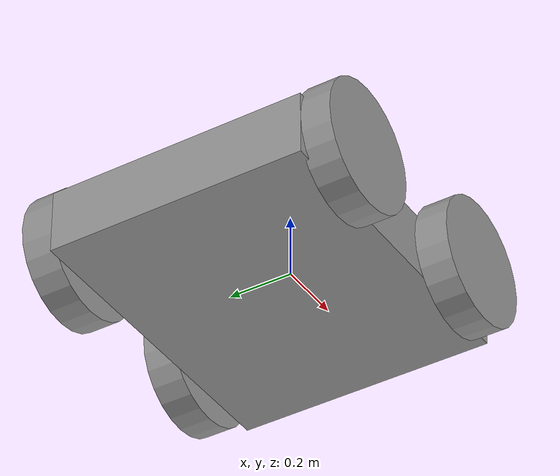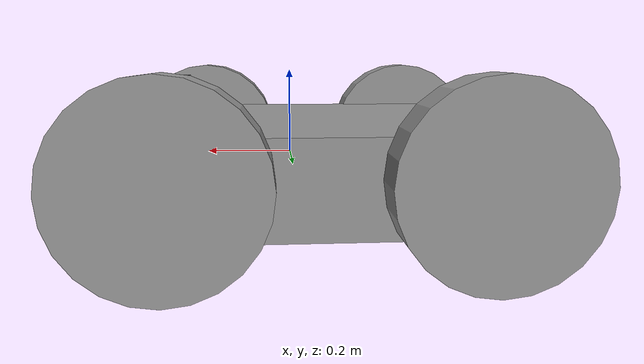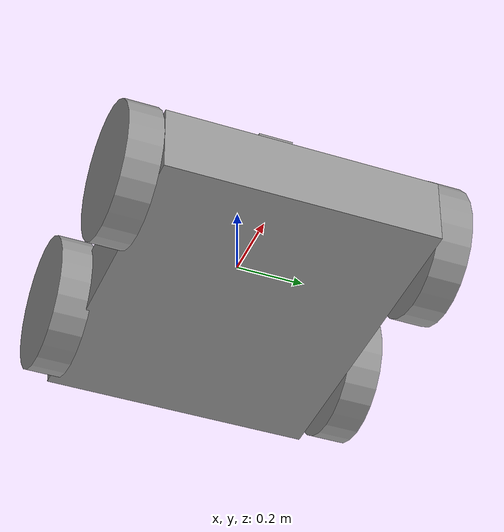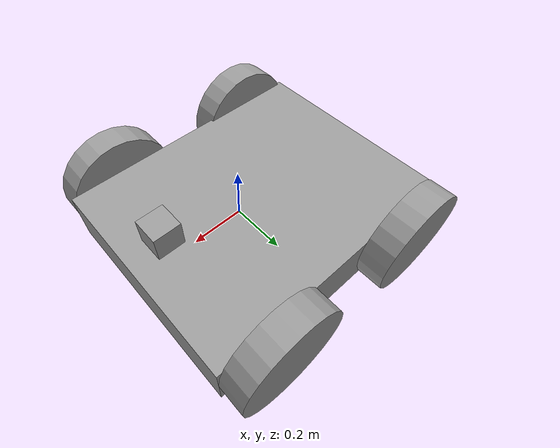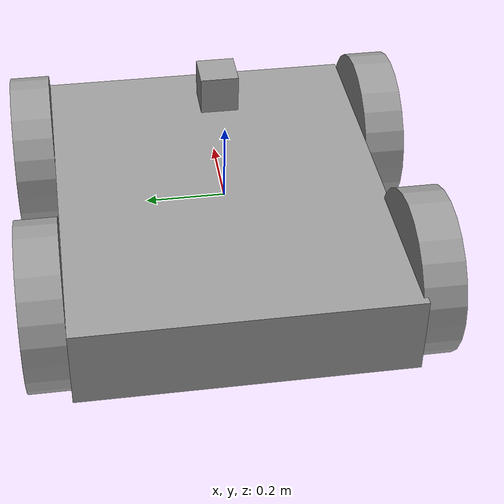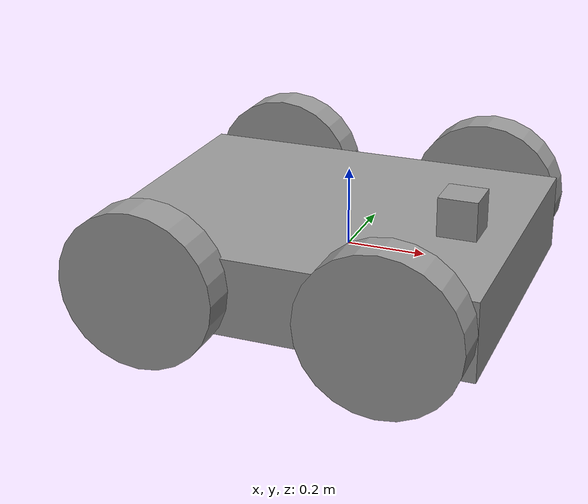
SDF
<?xml version='1.0'?>
<sdf version='1.7'>
  <model name='robot'>
    <link name='base_link'>
      <inertial>
        <mass>10</mass>
        <inertia>
          <ixx>0.166667</ixx>
          <ixy>0</ixy>
          <ixz>0</ixz>
          <iyy>0.166667</iyy>
          <iyz>0</iyz>
          <izz>0.166667</izz>
        </inertia>
        <pose>0 0 0 0 -0 0</pose>
      </inertial>
      <pose>-0.06 0.022497 -0.013333 0 -0 0</pose>
      <gravity>1</gravity>
      <self_collide>0</self_collide>
      <kinematic>0</kinematic>
      <enable_wind>0</enable_wind>
      <visual name='visual'>
        <pose>0 0 0 0 -0 0</pose>
        <geometry>
          <box>
            <size>1 0.8 0.2</size>
          </box>
        </geometry>
        <material>
          <lighting>1</lighting>
          <script>
            <uri>file://media/materials/scripts/gazebo.material</uri>
            <name>Gazebo/Grey</name>
          </script>
          <shader type='pixel'>
            <normal_map>__default__</normal_map>
          </shader>
          <ambient>0.3 0.3 0.3 1</ambient>
          <diffuse>0.7 0.7 0.7 1</diffuse>
          <specular>0.01 0.01 0.01 1</specular>
          <emissive>0 0 0 1</emissive>
        </material>
        <transparency>0</transparency>
        <cast_shadows>1</cast_shadows>
      </visual>
      <collision name='collision'>
        <laser_retro>0</laser_retro>
        <max_contacts>10</max_contacts>
        <pose>0 0 0 0 -0 0</pose>
        <geometry>
          <box>
            <size>1 0.8 0.2</size>
          </box>
        </geometry>
        <surface>
          <friction>
            <ode>
              <mu>1</mu>
              <mu2>1</mu2>
              <fdir1>0 0 0</fdir1>
              <slip1>0</slip1>
              <slip2>0</slip2>
            </ode>
            <torsional>
              <coefficient>1</coefficient>
              <patch_radius>0</patch_radius>
              <surface_radius>0</surface_radius>
              <use_patch_radius>1</use_patch_radius>
              <ode>
                <slip>0</slip>
              </ode>
            </torsional>
          </friction>
          <bounce>
            <restitution_coefficient>0</restitution_coefficient>
            <threshold>1e+06</threshold>
          </bounce>
          <contact>
            <collide_without_contact>0</collide_without_contact>
            <collide_without_contact_bitmask>1</collide_without_contact_bitmask>
            <collide_bitmask>1</collide_bitmask>
            <ode>
              <soft_cfm>0</soft_cfm>
              <soft_erp>0.2</soft_erp>
              <kp>1e+13</kp>
              <kd>1</kd>
              <max_vel>0.01</max_vel>
              <min_depth>0</min_depth>
            </ode>
            <bullet>
              <split_impulse>1</split_impulse>
              <split_impulse_penetration_threshold>-0.01</split_impulse_penetration_threshold>
              <soft_cfm>0</soft_cfm>
              <soft_erp>0.2</soft_erp>
              <kp>1e+13</kp>
              <kd>1</kd>
            </bullet>
          </contact>
        </surface>
      </collision>
    </link>
    <link name='back_left_wheel'>
      <inertial>
        <mass>1</mass>
        <inertia>
          <ixx>0.145833</ixx>
          <ixy>0</ixy>
          <ixz>0</ixz>
          <iyy>0.145833</iyy>
          <iyz>0</iyz>
          <izz>0.125</izz>
        </inertia>
        <pose>0 0 0 0 -0 0</pose>
      </inertial>
      <pose>-0.36 -0.417503 0.006667 0 -0 0</pose>
      <gravity>1</gravity>
      <self_collide>0</self_collide>
      <kinematic>0</kinematic>
      <enable_wind>0</enable_wind>
      <visual name='visual'>
        <pose>0 0 0 1.5707 -0 0</pose>
        <geometry>
          <cylinder>
            <radius>0.2</radius>
            <length>0.1</length>
          </cylinder>
        </geometry>
        <material>
          <lighting>1</lighting>
          <script>
            <uri>file://media/materials/scripts/gazebo.material</uri>
            <name>Gazebo/Grey</name>
          </script>
          <shader type='pixel'>
            <normal_map>__default__</normal_map>
          </shader>
          <ambient>0.3 0.3 0.3 1</ambient>
          <diffuse>0.7 0.7 0.7 1</diffuse>
          <specular>0.01 0.01 0.01 1</specular>
          <emissive>0 0 0 1</emissive>
        </material>
        <transparency>0</transparency>
        <cast_shadows>1</cast_shadows>
      </visual>
      <collision name='collision'>
        <laser_retro>0</laser_retro>
        <max_contacts>10</max_contacts>
        <pose>0 0 0 1.5707 -0 0</pose>
        <geometry>
          <cylinder>
            <radius>0.2</radius>
            <length>0.1</length>
          </cylinder>
        </geometry>
        <surface>
          <friction>
            <ode>
              <mu>1</mu>
              <mu2>1</mu2>
              <fdir1>0 0 0</fdir1>
              <slip1>0</slip1>
              <slip2>0</slip2>
            </ode>
            <torsional>
              <coefficient>1</coefficient>
              <patch_radius>0</patch_radius>
              <surface_radius>0</surface_radius>
              <use_patch_radius>1</use_patch_radius>
              <ode>
                <slip>0</slip>
              </ode>
            </torsional>
          </friction>
          <bounce>
            <restitution_coefficient>0</restitution_coefficient>
            <threshold>1e+06</threshold>
          </bounce>
          <contact>
            <collide_without_contact>0</collide_without_contact>
            <collide_without_contact_bitmask>1</collide_without_contact_bitmask>
            <collide_bitmask>1</collide_bitmask>
            <ode>
              <soft_cfm>0</soft_cfm>
              <soft_erp>0.2</soft_erp>
              <kp>1e+13</kp>
              <kd>1</kd>
              <max_vel>0.01</max_vel>
              <min_depth>0</min_depth>
            </ode>
            <bullet>
              <split_impulse>1</split_impulse>
              <split_impulse_penetration_threshold>-0.01</split_impulse_penetration_threshold>
              <soft_cfm>0</soft_cfm>
              <soft_erp>0.2</soft_erp>
              <kp>1e+13</kp>
              <kd>1</kd>
            </bullet>
          </contact>
        </surface>
      </collision>
    </link>
    <link name='back_right_wheel'>
      <inertial>
        <mass>1</mass>
        <inertia>
          <ixx>0.145833</ixx>
          <ixy>0</ixy>
          <ixz>0</ixz>
          <iyy>0.145833</iyy>
          <iyz>0</iyz>
          <izz>0.125</izz>
        </inertia>
        <pose>0 0 0 0 -0 0</pose>
      </inertial>
      <pose>-0.36 0.472516 0.006667 0 -0 0</pose>
      <gravity>1</gravity>
      <self_collide>0</self_collide>
      <kinematic>0</kinematic>
      <enable_wind>0</enable_wind>
      <visual name='visual'>
        <pose>0 0 0 1.5707 -0 0</pose>
        <geometry>
          <cylinder>
            <radius>0.2</radius>
            <length>0.1</length>
          </cylinder>
        </geometry>
        <material>
          <lighting>1</lighting>
          <script>
            <uri>file://media/materials/scripts/gazebo.material</uri>
            <name>Gazebo/Grey</name>
          </script>
          <shader type='pixel'>
            <normal_map>__default__</normal_map>
          </shader>
          <ambient>0.3 0.3 0.3 1</ambient>
          <diffuse>0.7 0.7 0.7 1</diffuse>
          <specular>0.01 0.01 0.01 1</specular>
          <emissive>0 0 0 1</emissive>
        </material>
        <transparency>0</transparency>
        <cast_shadows>1</cast_shadows>
      </visual>
      <collision name='collision'>
        <laser_retro>0</laser_retro>
        <max_contacts>10</max_contacts>
        <pose>0 0 0 1.5707 -0 0</pose>
        <geometry>
          <cylinder>
            <radius>0.2</radius>
            <length>0.1</length>
          </cylinder>
        </geometry>
        <surface>
          <friction>
            <ode>
              <mu>1</mu>
              <mu2>1</mu2>
              <fdir1>0 0 0</fdir1>
              <slip1>0</slip1>
              <slip2>0</slip2>
            </ode>
            <torsional>
              <coefficient>1</coefficient>
              <patch_radius>0</patch_radius>
              <surface_radius>0</surface_radius>
              <use_patch_radius>1</use_patch_radius>
              <ode>
                <slip>0</slip>
              </ode>
            </torsional>
          </friction>
          <bounce>
            <restitution_coefficient>0</restitution_coefficient>
            <threshold>1e+06</threshold>
          </bounce>
          <contact>
            <collide_without_contact>0</collide_without_contact>
            <collide_without_contact_bitmask>1</collide_without_contact_bitmask>
            <collide_bitmask>1</collide_bitmask>
            <ode>
              <soft_cfm>0</soft_cfm>
              <soft_erp>0.2</soft_erp>
              <kp>1e+13</kp>
              <kd>1</kd>
              <max_vel>0.01</max_vel>
              <min_depth>0</min_depth>
            </ode>
            <bullet>
              <split_impulse>1</split_impulse>
              <split_impulse_penetration_threshold>-0.01</split_impulse_penetration_threshold>
              <soft_cfm>0</soft_cfm>
              <soft_erp>0.2</soft_erp>
              <kp>1e+13</kp>
              <kd>1</kd>
            </bullet>
          </contact>
        </surface>
      </collision>
    </link>
    <link name='front_right_wheel'>
      <inertial>
        <mass>1</mass>
        <inertia>
          <ixx>0.145833</ixx>
          <ixy>0</ixy>
          <ixz>0</ixz>
          <iyy>0.145833</iyy>
          <iyz>0</iyz>
          <izz>0.125</izz>
        </inertia>
        <pose>0 0 0 0 -0 0</pose>
      </inertial>
      <pose>0.24 0.472516 0.006667 0 -0 0</pose>
      <gravity>1</gravity>
      <self_collide>0</self_collide>
      <kinematic>0</kinematic>
      <enable_wind>0</enable_wind>
      <visual name='visual'>
        <pose>0 0 0 1.5707 -0 0</pose>
        <geometry>
          <cylinder>
            <radius>0.2</radius>
            <length>0.1</length>
          </cylinder>
        </geometry>
        <material>
          <lighting>1</lighting>
          <script>
            <uri>file://media/materials/scripts/gazebo.material</uri>
            <name>Gazebo/Grey</name>
          </script>
          <shader type='pixel'>
            <normal_map>__default__</normal_map>
          </shader>
          <ambient>0.3 0.3 0.3 1</ambient>
          <diffuse>0.7 0.7 0.7 1</diffuse>
          <specular>0.01 0.01 0.01 1</specular>
          <emissive>0 0 0 1</emissive>
        </material>
        <transparency>0</transparency>
        <cast_shadows>1</cast_shadows>
      </visual>
      <collision name='collision'>
        <laser_retro>0</laser_retro>
        <max_contacts>10</max_contacts>
        <pose>0 0 0 1.5707 -0 0</pose>
        <geometry>
          <cylinder>
            <radius>0.2</radius>
            <length>0.1</length>
          </cylinder>
        </geometry>
        <surface>
          <friction>
            <ode>
              <mu>1</mu>
              <mu2>1</mu2>
              <fdir1>0 0 0</fdir1>
              <slip1>0</slip1>
              <slip2>0</slip2>
            </ode>
            <torsional>
              <coefficient>1</coefficient>
              <patch_radius>0</patch_radius>
              <surface_radius>0</surface_radius>
              <use_patch_radius>1</use_patch_radius>
              <ode>
                <slip>0</slip>
              </ode>
            </torsional>
          </friction>
          <bounce>
            <restitution_coefficient>0</restitution_coefficient>
            <threshold>1e+06</threshold>
          </bounce>
          <contact>
            <collide_without_contact>0</collide_without_contact>
            <collide_without_contact_bitmask>1</collide_without_contact_bitmask>
            <collide_bitmask>1</collide_bitmask>
            <ode>
              <soft_cfm>0</soft_cfm>
              <soft_erp>0.2</soft_erp>
              <kp>1e+13</kp>
              <kd>1</kd>
              <max_vel>0.01</max_vel>
              <min_depth>0</min_depth>
            </ode>
            <bullet>
              <split_impulse>1</split_impulse>
              <split_impulse_penetration_threshold>-0.01</split_impulse_penetration_threshold>
              <soft_cfm>0</soft_cfm>
              <soft_erp>0.2</soft_erp>
              <kp>1e+13</kp>
              <kd>1</kd>
            </bullet>
          </contact>
        </surface>
      </collision>
    </link>
    <link name='front_left_wheel'>
      <inertial>
        <mass>1</mass>
        <inertia>
          <ixx>0.145833</ixx>
          <ixy>0</ixy>
          <ixz>0</ixz>
          <iyy>0.145833</iyy>
          <iyz>0</iyz>
          <izz>0.125</izz>
        </inertia>
        <pose>0 0 0 0 -0 0</pose>
      </inertial>
      <pose>0.24 -0.427523 0.006667 0 -0 0</pose>
      <gravity>1</gravity>
      <self_collide>0</self_collide>
      <kinematic>0</kinematic>
      <enable_wind>0</enable_wind>
      <visual name='visual'>
        <pose>0 0 0 1.5707 -0 0</pose>
        <geometry>
          <cylinder>
            <radius>0.2</radius>
            <length>0.1</length>
          </cylinder>
        </geometry>
        <material>
          <lighting>1</lighting>
          <script>
            <uri>file://media/materials/scripts/gazebo.material</uri>
            <name>Gazebo/Grey</name>
          </script>
          <shader type='pixel'>
            <normal_map>__default__</normal_map>
          </shader>
          <ambient>0.3 0.3 0.3 1</ambient>
          <diffuse>0.7 0.7 0.7 1</diffuse>
          <specular>0.01 0.01 0.01 1</specular>
          <emissive>0 0 0 1</emissive>
        </material>
        <transparency>0</transparency>
        <cast_shadows>1</cast_shadows>
      </visual>
      <collision name='collision'>
        <laser_retro>0</laser_retro>
        <max_contacts>10</max_contacts>
        <pose>0 0 0 1.5707 -0 0</pose>
        <geometry>
          <cylinder>
            <radius>0.2</radius>
            <length>0.1</length>
          </cylinder>
        </geometry>
        <surface>
          <friction>
            <ode>
              <mu>1</mu>
              <mu2>1</mu2>
              <fdir1>0 0 0</fdir1>
              <slip1>0</slip1>
              <slip2>0</slip2>
            </ode>
            <torsional>
              <coefficient>1</coefficient>
              <patch_radius>0</patch_radius>
              <surface_radius>0</surface_radius>
              <use_patch_radius>1</use_patch_radius>
              <ode>
                <slip>0</slip>
              </ode>
            </torsional>
          </friction>
          <bounce>
            <restitution_coefficient>0</restitution_coefficient>
            <threshold>1e+06</threshold>
          </bounce>
          <contact>
            <collide_without_contact>0</collide_without_contact>
            <collide_without_contact_bitmask>1</collide_without_contact_bitmask>
            <collide_bitmask>1</collide_bitmask>
            <ode>
              <soft_cfm>0</soft_cfm>
              <soft_erp>0.2</soft_erp>
              <kp>1e+13</kp>
              <kd>1</kd>
              <max_vel>0.01</max_vel>
              <min_depth>0</min_depth>
            </ode>
            <bullet>
              <split_impulse>1</split_impulse>
              <split_impulse_penetration_threshold>-0.01</split_impulse_penetration_threshold>
              <soft_cfm>0</soft_cfm>
              <soft_erp>0.2</soft_erp>
              <kp>1e+13</kp>
              <kd>1</kd>
            </bullet>
          </contact>
        </surface>
      </collision>
    </link>
    <link name='link_2'>
      <inertial>
        <mass>1</mass>
        <inertia>
          <ixx>0.166667</ixx>
          <ixy>0</ixy>
          <ixz>0</ixz>
          <iyy>0.166667</iyy>
          <iyz>0</iyz>
          <izz>0.166667</izz>
        </inertia>
        <pose>0 0 0 0 -0 0</pose>
      </inertial>
      <pose>0.3 -0.022503 0.136667 0 -0 0</pose>
      <gravity>1</gravity>
      <self_collide>0</self_collide>
      <kinematic>0</kinematic>
      <enable_wind>0</enable_wind>
      <visual name='visual'>
        <pose>0 0 0 0 -0 0</pose>
        <geometry>
          <box>
            <size>0.1 0.1 0.1</size>
          </box>
        </geometry>
        <material>
          <lighting>1</lighting>
          <script>
            <uri>file://media/materials/scripts/gazebo.material</uri>
            <name>Gazebo/Grey</name>
          </script>
          <shader type='pixel'>
            <normal_map>__default__</normal_map>
          </shader>
          <ambient>0.3 0.3 0.3 1</ambient>
          <diffuse>0.7 0.7 0.7 1</diffuse>
          <specular>0.01 0.01 0.01 1</specular>
          <emissive>0 0 0 1</emissive>
        </material>
        <transparency>0</transparency>
        <cast_shadows>1</cast_shadows>
      </visual>
      <collision name='collision'>
        <laser_retro>0</laser_retro>
        <max_contacts>10</max_contacts>
        <pose>0 0 0 0 -0 0</pose>
        <geometry>
          <box>
            <size>0.1 0.1 0.1</size>
          </box>
        </geometry>
        <surface>
          <friction>
            <ode>
              <mu>1</mu>
              <mu2>1</mu2>
              <fdir1>0 0 0</fdir1>
              <slip1>0</slip1>
              <slip2>0</slip2>
            </ode>
            <torsional>
              <coefficient>1</coefficient>
              <patch_radius>0</patch_radius>
              <surface_radius>0</surface_radius>
              <use_patch_radius>1</use_patch_radius>
              <ode>
                <slip>0</slip>
              </ode>
            </torsional>
          </friction>
          <bounce>
            <restitution_coefficient>0</restitution_coefficient>
            <threshold>1e+06</threshold>
          </bounce>
          <contact>
            <collide_without_contact>0</collide_without_contact>
            <collide_without_contact_bitmask>1</collide_without_contact_bitmask>
            <collide_bitmask>1</collide_bitmask>
            <ode>
              <soft_cfm>0</soft_cfm>
              <soft_erp>0.2</soft_erp>
              <kp>1e+13</kp>
              <kd>1</kd>
              <max_vel>0.01</max_vel>
              <min_depth>0</min_depth>
            </ode>
            <bullet>
              <split_impulse>1</split_impulse>
              <split_impulse_penetration_threshold>-0.01</split_impulse_penetration_threshold>
              <soft_cfm>0</soft_cfm>
              <soft_erp>0.2</soft_erp>
              <kp>1e+13</kp>
              <kd>1</kd>
            </bullet>
          </contact>
        </surface>
      </collision>
    </link>
    <joint name='front_left_wheel_joint' type='revolute'>
      <parent>base_link</parent>
      <child>front_left_wheel</child>
      <pose>0 0 0 0 -0 0</pose>
      <axis>
        <xyz>0 1 0</xyz>
        <limit>
          <lower>-1.79769e+308</lower>
          <upper>1.79769e+308</upper>
          <effort>-1</effort>
          <velocity>-1</velocity>
        </limit>
        <dynamics>
          <spring_reference>0</spring_reference>
          <spring_stiffness>0</spring_stiffness>
          <damping>0</damping>
          <friction>0</friction>
        </dynamics>
      </axis>
      <physics>
        <ode>
          <limit>
            <cfm>0</cfm>
            <erp>0.2</erp>
          </limit>
          <suspension>
            <cfm>0</cfm>
            <erp>0.2</erp>
          </suspension>
        </ode>
      </physics>
    </joint>
    <joint name='back_left_wheel_joint' type='revolute'>
      <parent>base_link</parent>
      <child>back_left_wheel</child>
      <pose>0 0 0 0 -0 0</pose>
      <axis>
        <xyz>0 1 0</xyz>
        <limit>
          <lower>-1.79769e+308</lower>
          <upper>1.79769e+308</upper>
          <effort>-1</effort>
          <velocity>-1</velocity>
        </limit>
        <dynamics>
          <spring_reference>0</spring_reference>
          <spring_stiffness>0</spring_stiffness>
          <damping>0</damping>
          <friction>0</friction>
        </dynamics>
      </axis>
      <physics>
        <ode>
          <limit>
            <cfm>0</cfm>
            <erp>0.2</erp>
          </limit>
          <suspension>
            <cfm>0</cfm>
            <erp>0.2</erp>
          </suspension>
        </ode>
      </physics>
    </joint>
    <joint name='front_right_wheel_joint' type='revolute'>
      <parent>base_link</parent>
      <child>front_right_wheel</child>
      <pose>0 0 0 0 -0 0</pose>
      <axis>
        <xyz>0 1 0</xyz>
        <limit>
          <lower>-1.79769e+308</lower>
          <upper>1.79769e+308</upper>
          <effort>-1</effort>
          <velocity>-1</velocity>
        </limit>
        <dynamics>
          <spring_reference>0</spring_reference>
          <spring_stiffness>0</spring_stiffness>
          <damping>0</damping>
          <friction>0</friction>
        </dynamics>
      </axis>
      <physics>
        <ode>
          <limit>
            <cfm>0</cfm>
            <erp>0.2</erp>
          </limit>
          <suspension>
            <cfm>0</cfm>
            <erp>0.2</erp>
          </suspension>
        </ode>
      </physics>
    </joint>
    <joint name='back_right_wheel_joint' type='revolute'>
      <parent>base_link</parent>
      <child>back_right_wheel</child>
      <pose>0 0 0 0 -0 0</pose>
      <axis>
        <xyz>0 1 0</xyz>
        <limit>
          <lower>-1.79769e+308</lower>
          <upper>1.79769e+308</upper>
          <effort>-1</effort>
          <velocity>-1</velocity>
        </limit>
        <dynamics>
          <spring_reference>0</spring_reference>
          <spring_stiffness>0</spring_stiffness>
          <damping>0</damping>
          <friction>0</friction>
        </dynamics>
      </axis>
      <physics>
        <ode>
          <limit>
            <cfm>0</cfm>
            <erp>0.2</erp>
          </limit>
          <suspension>
            <cfm>0</cfm>
            <erp>0.2</erp>
          </suspension>
        </ode>
      </physics>
    </joint>
    <joint name='link_2_JOINT_5' type='fixed'>
      <parent>base_link</parent>
      <child>link_2</child>
      <pose>0 0 0 0 -0 0</pose>
      <axis>
        <xyz>1 0 0</xyz>
        <limit>
          <lower>-1.79769e+308</lower>
          <upper>1.79769e+308</upper>
          <effort>-1</effort>
          <velocity>-1</velocity>
        </limit>
        <dynamics>
          <spring_reference>0</spring_reference>
          <spring_stiffness>0</spring_stiffness>
          <damping>0</damping>
        </dynamics>
      </axis>
      <physics>
        <ode>
          <limit>
            <cfm>0</cfm>
            <erp>0.2</erp>
          </limit>
          <suspension>
            <cfm>0</cfm>
            <erp>0.2</erp>
          </suspension>
        </ode>
      </physics>
    </joint>
    <static>0</static>
    <allow_auto_disable>1</allow_auto_disable>
    <plugin name="skid_steer_drive_controller" filename="libgazebo_ros_skid_steer_drive.so">
      <robotNamespace>/</robotNamespace>
      <updateRate>100.0</updateRate>
      <robotNamespace>/</robotNamespace>
      <leftFrontJoint>front_left_wheel_joint</leftFrontJoint>
      <rightFrontJoint>front_right_wheel_joint</rightFrontJoint>
      <leftRearJoint>back_left_wheel_joint</leftRearJoint>
      <rightRearJoint>back_right_wheel_joint</rightRearJoint>
      <wheelSeparation>0.4</wheelSeparation>
      <wheelDiameter>0.4</wheelDiameter>
      <robotBaseFrame>base_link</robotBaseFrame>
      <torque>20</torque>
      <topicName>cmd_vel</topicName>
      <broadcastTF>false</broadcastTF>
      <odometryTopic>odom</odometryTopic>
      <odometryFrame>odom</odometryFrame>
      <covariance_x>0.001000</covariance_x>
      <covariance_y>0.001000</covariance_y>
      <covariance_yaw>0.100000</covariance_yaw>
    </plugin>

  </model>
</sdf>
